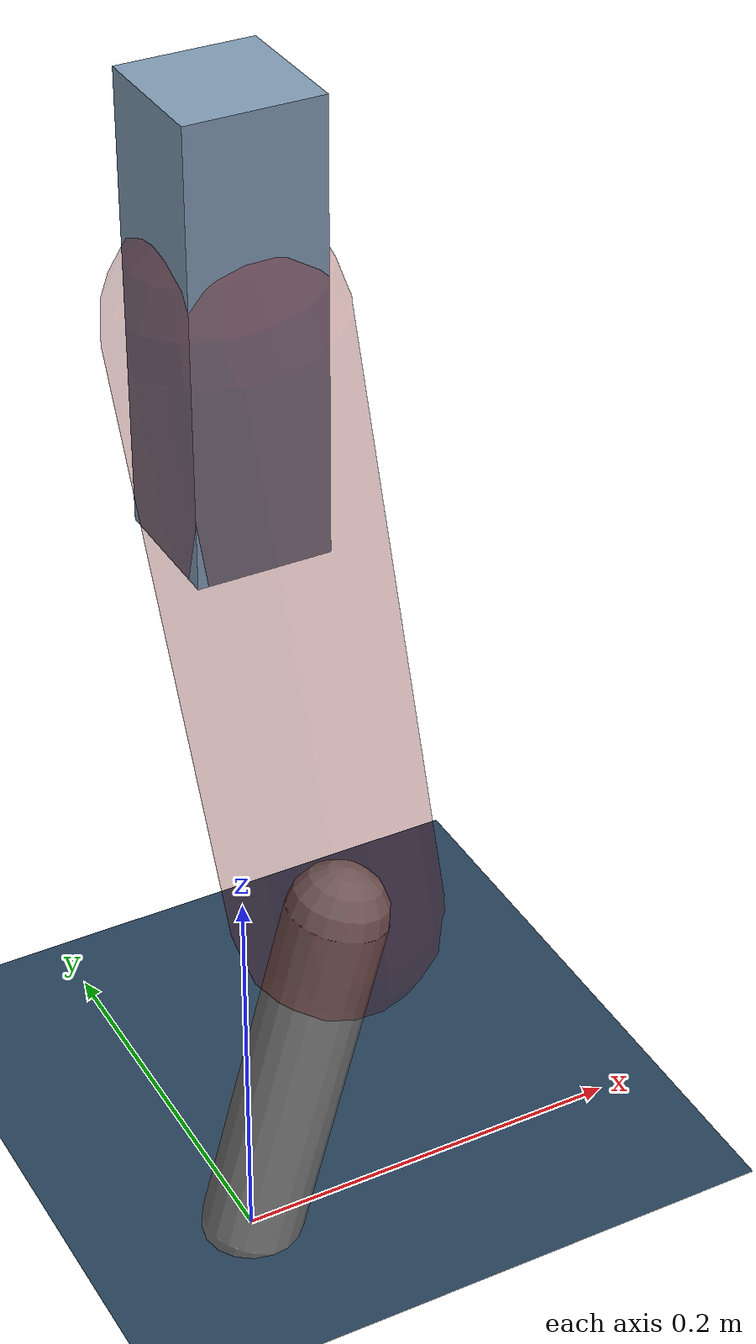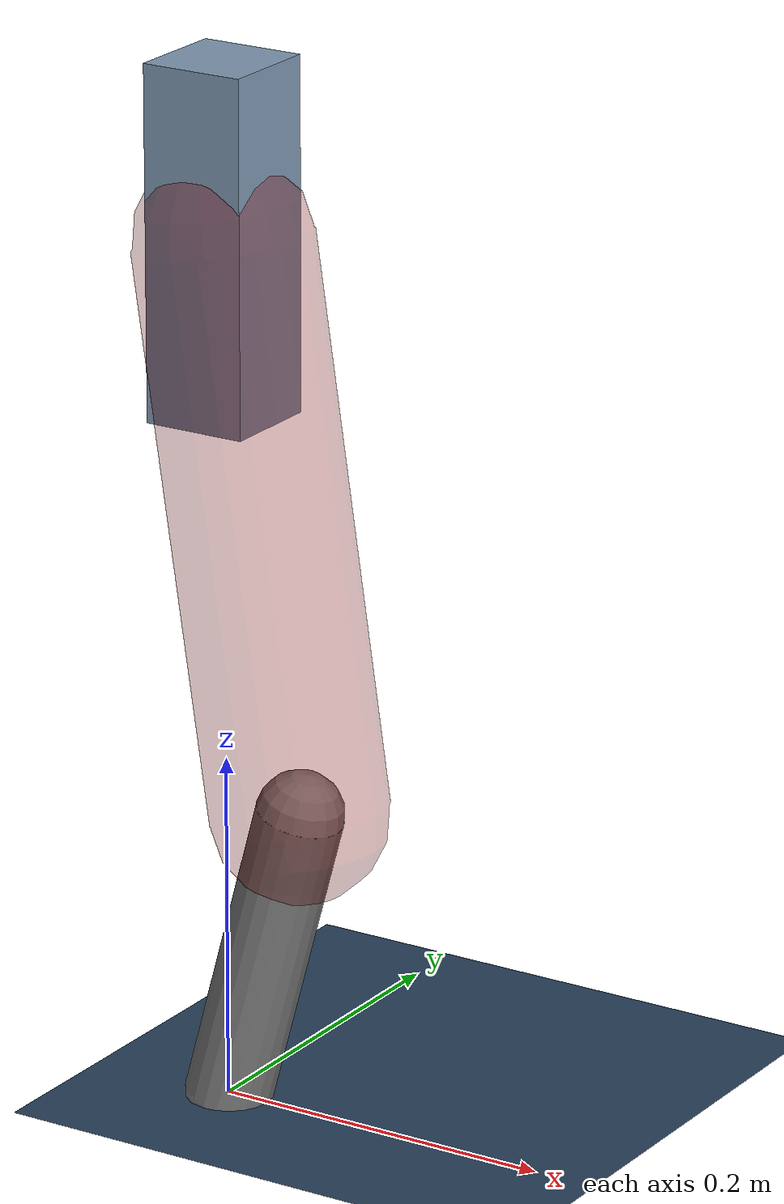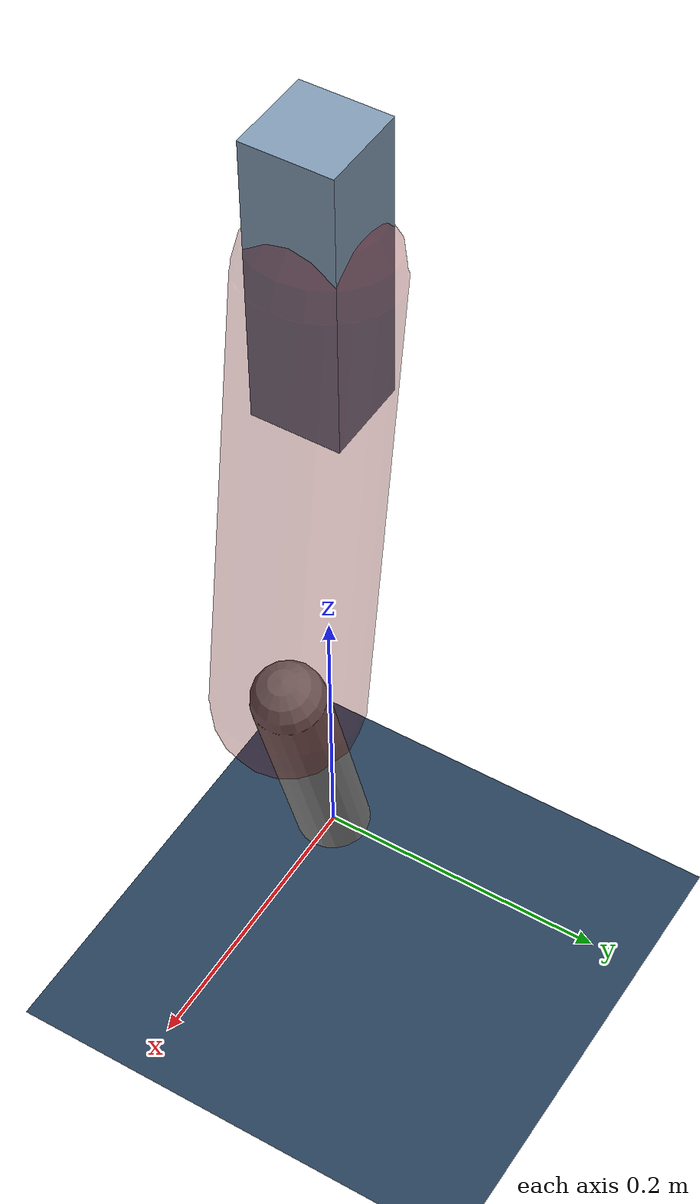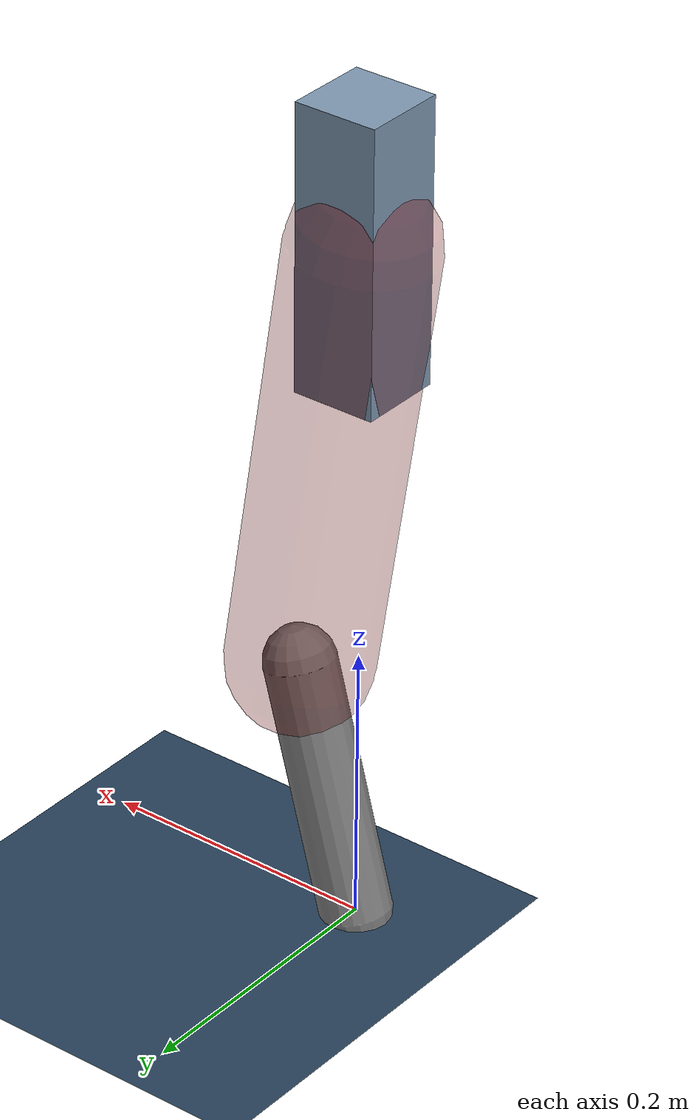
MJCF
<mujoco model="Hopper2D">
	<compiler inertiafromgeom="true" angle="radian" />
	<option timestep="0.001" integrator="implicit" cone="elliptic" solver="Newton" tolerance="1e-10" />

	<default>
		<geom contype="1" conaffinity="1" condim="3" friction="2 0.005 0.0001" solref="0.005 1" />
		<joint limited="true" damping="0.1" />
	</default>

	<asset>
		<texture name="skybox" type="skybox" builtin="gradient" rgb1=".4 .6 .8" rgb2="0 0 0" width="800" height="800" />
		<texture name="grid" type="2d" builtin="checker" rgb1=".1 .2 .3" rgb2=".2 .3 .4" width="300" height="300" mark="edge" markrgb=".2 .3 .4" />
		<material name="ground" texture="grid" texrepeat="1 1" texuniform="true" reflectance="0.1" />
		<material name="leg" rgba="0.5 0.6 0.7 1" />
	</asset>

	<worldbody>

		<geom name="floor" type="plane" size="5 5 0.25" material="ground" />

		<light directional="false" diffuse="0.8 0.8 0.8" specular="0.3 0.3 0.3" pos="0 0 2" dir="0 0 -1" />
		<light mode="targetbodycom" target="base" directional="false" diffuse="0.8 0.8 0.8" specular="0.3 0.3 0.3" pos="0 0 2" dir="0 0 -1" />

		<camera name="fixed" pos="0 -2 1" xyaxes="1 0 0 0 0 1" />
		<camera name="tracking" mode="trackcom" pos="0 -3 1" />

		<body name="root" pos="0 0 0.49758721143774975">
			<joint name="slide_x" type="slide" axis="1 0 0" range="-100 100" />
			<joint name="slide_z" type="slide" axis="0 0 1" range="0 10" />

			<body name="base" pos="0 0 0">
				<geom name="torso" type="box" size="0.03 0.03 0.1" mass="2.326" material="leg" />

				<body name="link1" pos="0 0 0" euler="0 1.4216738491090228 0">
					<joint type="hinge" axis="0 -1 0" pos="0 0 0" name="hinge1" limited="true" range="-3.14 3.14" stiffness="0" damping="0.1" />
					<geom name="thigh" type="capsule" fromto="0 0 0 0.32378385313381586 0 0" size="0.05" rgba="0.5 0 0 0.3" mass="1.0536947887746844" />

					<body name="link2" pos="0.32378385313381586 0 0" euler="0 0.41392458588778913 0">
						<joint type="hinge" axis="0 -1 0" pos="0 0 0" name="hinge2" limited="true" range="-3.14 3.14" stiffness="0" damping="0.1" />
						<geom name="shank" type="capsule" fromto="0 0 0 0.18380335830393388 0 0" size="0.025" mass="0.3871426866431471" />

					</body>
				</body>
			</body>
		</body>
	</worldbody>

	<actuator>
		<motor name="torque1" joint="hinge1" ctrlrange="-62.10323527080833 62.10323527080833" ctrllimited="true" gear="1" />
		<motor name="torque2" joint="hinge2" ctrlrange="-99.68087703951637 99.68087703951637" ctrllimited="true" gear="1" />
	</actuator>
</mujoco>
